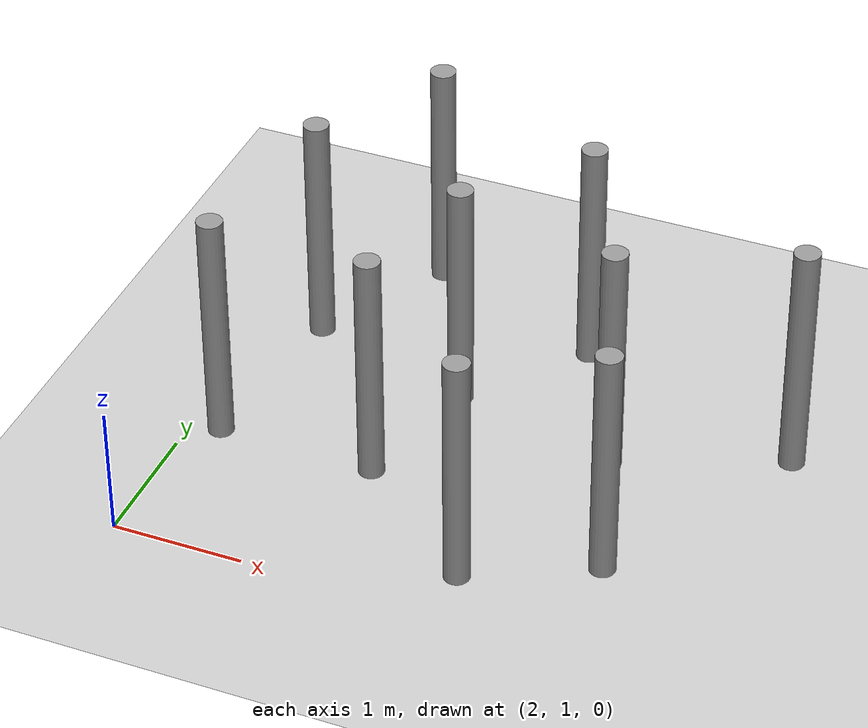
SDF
<sdf version="1.6">
 <world name="default">
  <light name="sun" type="directional">
   <pose>0 0 10 0 -0 0</pose>
   <diffuse>0.8 0.8 0.8 1</diffuse>
   <specular>0.2 0.2 0.2 1</specular>
   <attenuation>
    <range>1000</range>
    <constant>0.9</constant>
    <linear>0.01</linear>
    <quadratic>0.001</quadratic>
   </attenuation>
   <direction>-0.5 0.1 -0.9</direction>
  </light>
  <plugin name="ros_interface_plugin" filename="librotors_gazebo_ros_interface_plugin.so"/>
  <model name="ground_plane">
   <static>1</static>
   <link name="link">
    <collision name="collision">
     <geometry><plane><normal>0 0 1</normal><size>100 100</size></plane></geometry>
     <surface>
      <contact><collide_bitmask>65535</collide_bitmask></contact>
      <friction><ode><mu>100</mu><mu2>50</mu2></ode></friction>
     </surface>
    </collision>
    <visual name="visual">
     <cast_shadows>0</cast_shadows>
     <geometry><plane><normal>0 0 1</normal><size>100 100</size></plane></geometry>
     <material>
      <script><uri>file://media/materials/scripts/gazebo.material</uri><name>Gazebo/Grey</name></script>
     </material>
    </visual>
   </link>
  </model>
  <gravity>0 0 -9.8</gravity>
  <magnetic_field>6e-06 2.3e-05 -4.2e-05</magnetic_field>
  <atmosphere type="adiabatic"/>
  <physics name="default_physics" default="0" type="ode">
   <max_step_size>0.001</max_step_size>
   <real_time_factor>1</real_time_factor>
   <real_time_update_rate>1000</real_time_update_rate>
  </physics>
  <scene><ambient>0.4 0.4 0.4 1</ambient><background>0.7 0.7 0.7 1</background><shadows>1</shadows></scene>
  <spherical_coordinates>
   <surface_model>EARTH_WGS84</surface_model>
   <latitude_deg>0</latitude_deg>
   <longitude_deg>0</longitude_deg>
   <elevation>0</elevation>
   <heading_deg>0</heading_deg>
  </spherical_coordinates>
  <model name="unit_cylinder">
   <pose>2.22963 2.27774 0.93754 0 0 -0.000722</pose>
   <link name="link">
    <inertial>
     <mass>1</mass>
     <inertia><ixx>0.145833</ixx><ixy>0</ixy><ixz>0</ixz><iyy>0.145833</iyy><iyz>0</iyz><izz>0.125</izz></inertia>
    </inertial>
    <collision name="collision">
     <geometry><cylinder><radius>0.0977481</radius><length>1.87509</length></cylinder></geometry>
    </collision>
    <visual name="visual">
     <geometry><cylinder><radius>0.0977481</radius><length>1.87509</length></cylinder></geometry>
     <material>
      <script><name>Gazebo/Grey</name><uri>file://media/materials/scripts/gazebo.material</uri></script>
     </material>
    </visual>
   </link>
  </model>
  <model name="unit_cylinder_clone">
   <pose>2.41446 3.68091 0.937537 0 0 -0.000486</pose>
   <link name="link">
    <inertial>
     <mass>1</mass>
     <inertia><ixx>0.145833</ixx><ixy>0</ixy><ixz>0</ixz><iyy>0.145833</iyy><iyz>0</iyz><izz>0.125</izz></inertia>
    </inertial>
    <collision name="collision">
     <geometry><cylinder><radius>0.097748</radius><length>1.87509</length></cylinder></geometry>
    </collision>
    <visual name="visual">
     <geometry><cylinder><radius>0.097748</radius><length>1.87509</length></cylinder></geometry>
     <material>
      <script><name>Gazebo/Grey</name><uri>file://media/materials/scripts/gazebo.material</uri></script>
     </material>
    </visual>
   </link>
  </model>
  <model name="unit_cylinder_clone_0">
   <pose>3.71381 3.30325 0.937537 0 0 -0.000474</pose>
   <link name="link">
    <inertial>
     <mass>1</mass>
     <inertia><ixx>0.145833</ixx><ixy>0</ixy><ixz>0</ixz><iyy>0.145833</iyy><iyz>0</iyz><izz>0.125</izz></inertia>
    </inertial>
    <collision name="collision">
     <geometry><cylinder><radius>0.097748</radius><length>1.87509</length></cylinder></geometry>
    </collision>
    <visual name="visual">
     <geometry><cylinder><radius>0.097748</radius><length>1.87509</length></cylinder></geometry>
     <material>
      <script><name>Gazebo/Grey</name><uri>file://media/materials/scripts/gazebo.material</uri></script>
     </material>
    </visual>
   </link>
  </model>
  <model name="unit_cylinder_clone_1">
   <pose>4.42025 4.1502 0.937537 0 0 -0.000504</pose>
   <link name="link">
    <inertial>
     <mass>1</mass>
     <inertia><ixx>0.145833</ixx><ixy>0</ixy><ixz>0</ixz><iyy>0.145833</iyy><iyz>0</iyz><izz>0.125</izz></inertia>
    </inertial>
    <collision name="collision">
     <geometry><cylinder><radius>0.097748</radius><length>1.87509</length></cylinder></geometry>
    </collision>
    <visual name="visual">
     <geometry><cylinder><radius>0.097748</radius><length>1.87509</length></cylinder></geometry>
     <material>
      <script><name>Gazebo/Grey</name><uri>file://media/materials/scripts/gazebo.material</uri></script>
     </material>
    </visual>
   </link>
  </model>
  <model name="unit_cylinder_clone_2">
   <pose>3.44469 2.26258 0.937537 0 0 -0.00055</pose>
   <link name="link">
    <inertial>
     <mass>1</mass>
     <inertia><ixx>0.145833</ixx><ixy>0</ixy><ixz>0</ixz><iyy>0.145833</iyy><iyz>0</iyz><izz>0.125</izz></inertia>
    </inertial>
    <collision name="collision">
     <geometry><cylinder><radius>0.097748</radius><length>1.87509</length></cylinder></geometry>
    </collision>
    <visual name="visual">
     <geometry><cylinder><radius>0.097748</radius><length>1.87509</length></cylinder></geometry>
     <material>
      <script><name>Gazebo/Grey</name><uri>file://media/materials/scripts/gazebo.material</uri></script>
     </material>
    </visual>
   </link>
  </model>
  <model name="unit_cylinder_clone_3">
   <pose>5.00001 3.00001 0.937537 0 0 -0.000591</pose>
   <link name="link">
    <inertial>
     <mass>1</mass>
     <inertia><ixx>0.145833</ixx><ixy>0</ixy><ixz>0</ixz><iyy>0.145833</iyy><iyz>0</iyz><izz>0.125</izz></inertia>
    </inertial>
    <collision name="collision">
     <geometry><cylinder><radius>0.097748</radius><length>1.87509</length></cylinder></geometry>
    </collision>
    <visual name="visual">
     <geometry><cylinder><radius>0.097748</radius><length>1.87509</length></cylinder></geometry>
     <material>
      <script><name>Gazebo/Grey</name><uri>file://media/materials/scripts/gazebo.material</uri></script>
     </material>
    </visual>
   </link>
  </model>
  <model name="unit_cylinder_clone_4">
   <pose>4.45657 1.43299 0.93754 0 0 -0.001104</pose>
   <link name="link">
    <inertial>
     <mass>1</mass>
     <inertia><ixx>0.145833</ixx><ixy>0</ixy><ixz>0</ixz><iyy>0.145833</iyy><iyz>0</iyz><izz>0.125</izz></inertia>
    </inertial>
    <collision name="collision">
     <geometry><cylinder><radius>0.097748</radius><length>1.87509</length></cylinder></geometry>
    </collision>
    <visual name="visual">
     <geometry><cylinder><radius>0.097748</radius><length>1.87509</length></cylinder></geometry>
     <material>
      <script><name>Gazebo/Grey</name><uri>file://media/materials/scripts/gazebo.material</uri></script>
     </material>
    </visual>
   </link>
  </model>
  <model name="unit_cylinder_clone_5">
   <pose>2.99938 4.70126 0.937537 0 0 -0.000666</pose>
   <link name="link">
    <inertial>
     <mass>1</mass>
     <inertia><ixx>0.145833</ixx><ixy>0</ixy><ixz>0</ixz><iyy>0.145833</iyy><iyz>0</iyz><izz>0.125</izz></inertia>
    </inertial>
    <collision name="collision">
     <geometry><cylinder><radius>0.097748</radius><length>1.87509</length></cylinder></geometry>
    </collision>
    <visual name="visual">
     <geometry><cylinder><radius>0.097748</radius><length>1.87509</length></cylinder></geometry>
     <material>
      <script><name>Gazebo/Grey</name><uri>file://media/materials/scripts/gazebo.material</uri></script>
     </material>
    </visual>
   </link>
  </model>
  <model name="unit_cylinder_clone_6">
   <pose>5.36686 1.89128 0.937537 0 0 -0.000688</pose>
   <link name="link">
    <inertial>
     <mass>1</mass>
     <inertia><ixx>0.145833</ixx><ixy>0</ixy><ixz>0</ixz><iyy>0.145833</iyy><iyz>0</iyz><izz>0.125</izz></inertia>
    </inertial>
    <collision name="collision">
     <geometry><cylinder><radius>0.097748</radius><length>1.87509</length></cylinder></geometry>
    </collision>
    <visual name="visual">
     <geometry><cylinder><radius>0.097748</radius><length>1.87509</length></cylinder></geometry>
     <material>
      <script><name>Gazebo/Grey</name><uri>file://media/materials/scripts/gazebo.material</uri></script>
     </material>
    </visual>
   </link>
  </model>
  <model name="unit_cylinder_clone_7">
   <pose>6.23273 3.50693 0.937543 0 0 -0.000783</pose>
   <link name="link">
    <inertial>
     <mass>1</mass>
     <inertia><ixx>0.145833</ixx><ixy>0</ixy><ixz>0</ixz><iyy>0.145833</iyy><iyz>0</iyz><izz>0.125</izz></inertia>
    </inertial>
    <collision name="collision">
     <geometry><cylinder><radius>0.097748</radius><length>1.87509</length></cylinder></geometry>
    </collision>
    <visual name="visual">
     <geometry><cylinder><radius>0.097748</radius><length>1.87509</length></cylinder></geometry>
     <material>
      <script><name>Gazebo/Grey</name><uri>file://media/materials/scripts/gazebo.material</uri></script>
     </material>
    </visual>
   </link>
  </model>
 </world>
</sdf>
